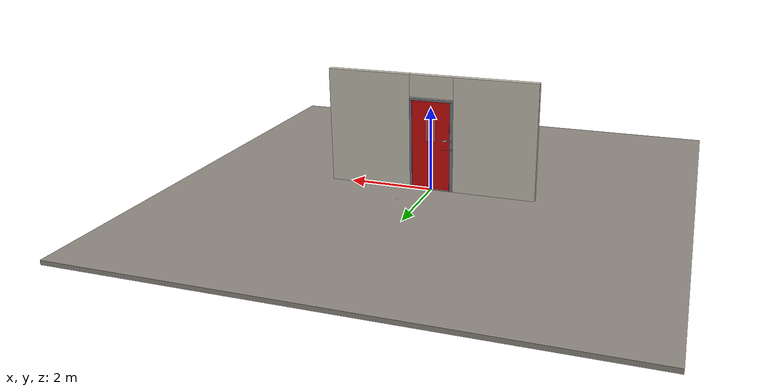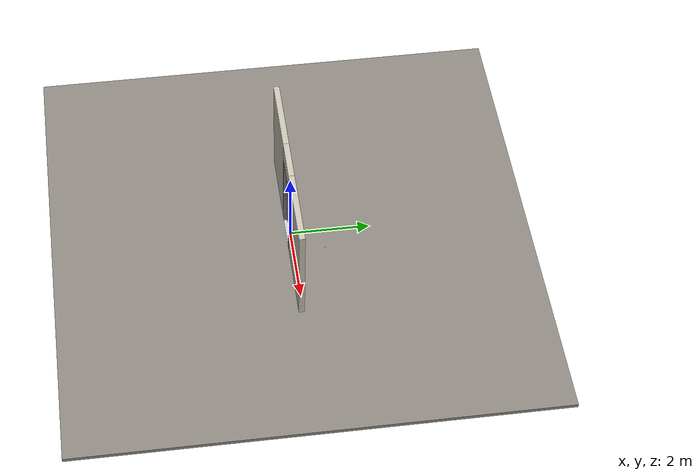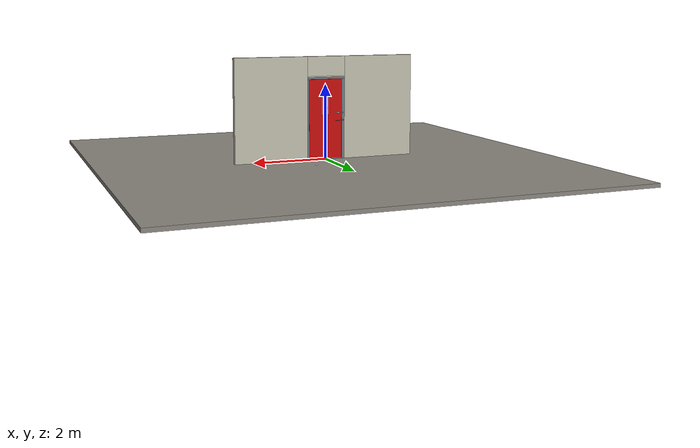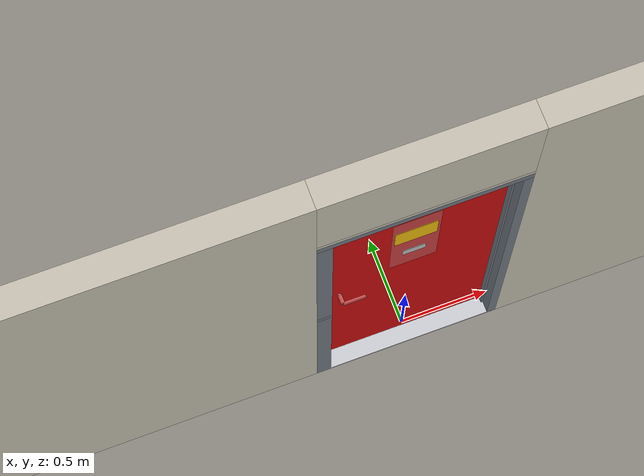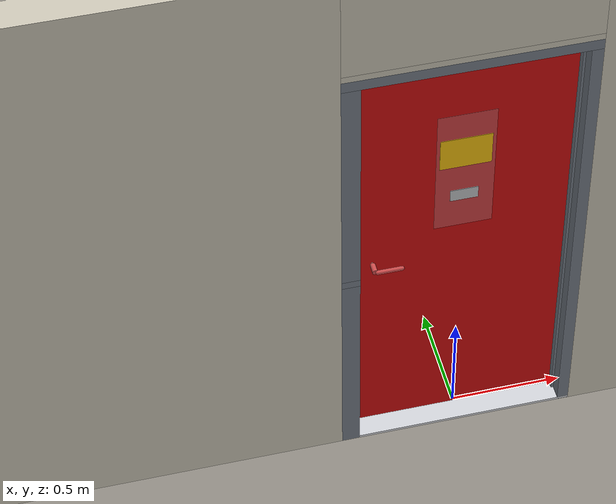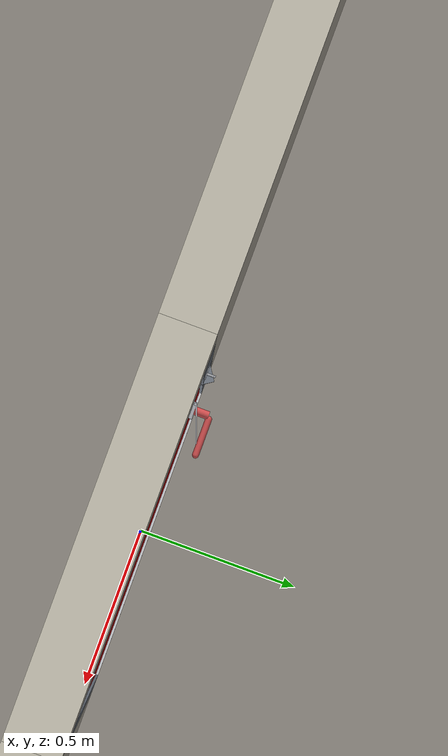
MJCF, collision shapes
<?xml version="1.0" ?>
<mujoco model="db0060_swing_single_full">
  <compiler angle="radian" meshdir="../../hardware" texturedir="../../textures" autolimits="true" inertiafromgeom="false"/>
  <option timestep="0.002" integrator="implicitfast" cone="elliptic" impratio="10" noslip_iterations="3">
    <flag multiccd="enable"/>
  </option>
  <size memory="16M"/>
  <default>
    <geom condim="4" solref="0.005 1" solimp="0.95 0.99 0.001"/>
    <joint solreflimit="0.005 1" solimplimit="0.95 0.99 0.001"/>
    <tendon solreflimit="0.005 1"/>
    <equality solref="0.002 1"/>
  </default>
  <visual>
    <headlight ambient="0.4 0.4 0.4" diffuse="0.7 0.7 0.7" specular="0.2 0.2 0.2"/>
    <quality shadowsize="4096"/>
    <map znear="0.01" zfar="60"/>
  </visual>
  <asset>
    <mesh name="hinge_e22b26c0c1" file="hinge_e22b26c0c1.obj"/>
    <mesh name="hinge_jamb_e1d088f8dc" file="hinge_jamb_e1d088f8dc.obj"/>
    <mesh name="lever_9f02b544cf" file="lever_9f02b544cf.obj"/>
    <material name="mat_floor" rgba="0.55 0.53 0.5 1" specular="0.2" shininess="0.15" reflectance="0"/>
    <material name="mat_wall" rgba="0.78 0.76 0.7 1" specular="0.2" shininess="0.1" reflectance="0"/>
    <material name="mat_leaf" rgba="0.8 0.05 0.05 1" specular="0.23" shininess="0.34" reflectance="0.02"/>
    <material name="mat_glass" rgba="0.85 0.92 0.95 0.25" specular="0.2" shininess="0.95" reflectance="0.1"/>
    <material name="mat_hinge" rgba="0.65 0.66 0.68 1" specular="0.74" shininess="0.5" reflectance="0.36"/>
    <material name="mat_op_nickel_satin" rgba="0.72 0.7 0.66 1" specular="0.8" shininess="0.65" reflectance="0.4"/>
    <material name="mat_trim" rgba="0.85 0.66 0.3 1" specular="0.8" shininess="0.75" reflectance="0.4"/>
    <material name="mat_bolt" rgba="0.85 0.66 0.3 1" specular="0.8" shininess="0.75" reflectance="0.4"/>
    <material name="mat_op_steel_galvanized" rgba="0.65 0.66 0.68 1" specular="0.74" shininess="0.5" reflectance="0.36"/>
    <material name="mat_padlock" rgba="0.85 0.66 0.3 1" specular="0.8" shininess="0.75" reflectance="0.4"/>
    <material name="mat_frame" rgba="0.45 0.48 0.52 1" specular="0.32" shininess="0.6" reflectance="0.08"/>
    <material name="mat_threshold" rgba="0.8 0.81 0.83 1" specular="0.8" shininess="0.6" reflectance="0.4"/>
    <material name="mat_sign" rgba="0.75 0.76 0.77 1" specular="0.8" shininess="0.65" reflectance="0.4"/>
    <material name="mat_placard" rgba="0.95 0.75 0.05 1" specular="0.2" shininess="0.5" reflectance="0"/>
    <material name="mat_stop" rgba="0.9 0.9 0.92 1" specular="0.8" shininess="0.9" reflectance="0.4"/>
    <texture name="skybox" type="skybox" builtin="gradient" rgb1="0.6 0.7 0.85" rgb2="0.9 0.92 0.95" width="256" height="256"/>
  </asset>
  <worldbody>
    <light name="sun" pos="1.5 -2.5 4" dir="-0.3 0.5 -0.8" directional="true" diffuse="0.8 0.8 0.8" specular="0.3 0.3 0.3" castshadow="true"/>
    <light name="fill" pos="-1.5 2.5 3" dir="0.3 -0.5 -0.7" directional="true" diffuse="0.35 0.35 0.4" castshadow="false"/>
    <camera name="robot_view" pos="0 -2.681312 1.812087" xyaxes="1 0 0 0 0.26963 0.962964" fovy="52"/>
    <camera name="far_view" pos="0 2.594313 1.812087" xyaxes="-1 0 0 0 -0.26963 0.962964" fovy="52"/>
    <camera name="iso" pos="-2.004737 -2.259262 2.234138" xyaxes="0.741536 -0.670913 0 0.242917 0.268487 0.932151" fovy="46"/>
    <camera name="detail_handle" pos="-0.1065 -0.877 1.32" xyaxes="0.97561 0.219512 0 -0.070934 0.315262 0.94635" fovy="38"/>
    <geom name="floor" type="box" size="6 6 0.05" pos="0 0 -0.05" material="mat_floor" group="0" contype="1" conaffinity="1" friction="0.8 0.005 0.0001" density="2400"/>
    <geom name="wall_left" type="box" size="0.97975 0.0725 1.3735" pos="-1.52025 -0.0435 1.3735" material="mat_wall" group="0" contype="1" conaffinity="1" friction="0.6 0.005 0.0001" density="800"/>
    <geom name="wall_right" type="box" size="0.99475 0.0725 1.3735" pos="1.50525 -0.0435 1.3735" material="mat_wall" group="0" contype="1" conaffinity="1" friction="0.6 0.005 0.0001" density="800"/>
    <geom name="wall_header" type="box" size="0.5255 0.0725 0.26" pos="-0.015 -0.0435 2.487" material="mat_wall" group="0" contype="1" conaffinity="1" friction="0.6 0.005 0.0001" density="800"/>
    <geom name="hinge_0_jamb" type="mesh" mesh="hinge_jamb_e1d088f8dc" pos="0.4575 0.029 0.267" quat="0 0 0 1" material="mat_hinge" group="1" contype="0" conaffinity="0" density="7850"/>
    <geom name="hinge_1_jamb" type="mesh" mesh="hinge_jamb_e1d088f8dc" pos="0.4575 0.029 1.08" quat="0 0 0 1" material="mat_hinge" group="1" contype="0" conaffinity="0" density="7850"/>
    <geom name="hinge_2_jamb" type="mesh" mesh="hinge_jamb_e1d088f8dc" pos="0.4575 0.029 1.963" quat="0 0 0 1" material="mat_hinge" group="1" contype="0" conaffinity="0" density="7850"/>
    <geom name="leaf_staple_leg_n" type="box" size="0.003 0.0025 0.013" pos="-0.4885 0.042 1.2275" quat="0 0 0.707107 0.707107" material="mat_op_steel_galvanized" group="0" contype="1" conaffinity="1" friction="0.6 0.005 0.0001" density="7800"/>
    <geom name="leaf_staple_leg_p" type="box" size="0.003 0.0025 0.013" pos="-0.4885 0.042 1.2525" quat="0 0 0.707107 0.707107" material="mat_op_steel_galvanized" group="0" contype="1" conaffinity="1" friction="0.6 0.005 0.0001" density="7800"/>
    <geom name="leaf_staple_bridge" type="box" size="0.003 0.015 0.0025" pos="-0.4885 0.0525 1.24" quat="0 0 0.707107 0.707107" material="mat_op_steel_galvanized" group="0" contype="1" conaffinity="1" friction="0.6 0.005 0.0001" density="7800"/>
    <geom name="leaf_staple_base" type="box" size="0.016 0.021 0.001" pos="-0.4885 0.03 1.24" quat="0 0 0.707107 0.707107" material="mat_op_steel_galvanized" group="1" contype="0" conaffinity="0" density="7800"/>
    <geom name="jamb_hinge" type="box" size="0.025 0.0725 1.0735" pos="0.4855 -0.0435 1.0735" material="mat_frame" group="0" contype="1" conaffinity="1" friction="0.6 0.005 0.0001" density="300"/>
    <geom name="strike_1040_wall_n" type="box" size="0.04 0.05325 0.0183" pos="-0.5005 -0.06275 1.04" material="mat_frame" group="0" contype="1" conaffinity="1" friction="0.6 0.005 0.0001" density="300"/>
    <geom name="strike_1040_wall_p" type="box" size="0.04 0.008 0.0183" pos="-0.5005 0.0175 1.04" material="mat_frame" group="0" contype="1" conaffinity="1" friction="0.6 0.005 0.0001" density="300"/>
    <geom name="strike_1040_ramp" type="box" size="0.04 0.018028 0.0183" pos="-0.503782 0.018312 1.04" quat="0.957092 0 0 0.289784" material="mat_frame" group="0" contype="1" conaffinity="1" friction="0.12 0.005 0.0001" density="300"/>
    <geom name="strike_1040_back" type="box" size="0.0285 0.0095 0.0183" pos="-0.512 0 1.04" material="mat_frame" group="0" contype="1" conaffinity="1" friction="0.6 0.005 0.0001" density="300"/>
    <geom name="jamb_strike_0" type="box" size="0.04 0.0725 0.51085" pos="-0.5005 -0.0435 0.51085" material="mat_frame" group="0" contype="1" conaffinity="1" friction="0.6 0.005 0.0001" density="300"/>
    <geom name="jamb_strike_1" type="box" size="0.04 0.0725 0.54435" pos="-0.5005 -0.0435 1.60265" material="mat_frame" group="0" contype="1" conaffinity="1" friction="0.6 0.005 0.0001" density="300"/>
    <geom name="jamb_head" type="box" size="0.5255 0.0725 0.025" pos="-0.015 -0.0435 2.172" material="mat_frame" group="0" contype="1" conaffinity="1" friction="0.6 0.005 0.0001" density="300"/>
    <geom name="head_stud" type="box" size="0.5255 0.0725 0.015" pos="-0.015 -0.0435 2.212" material="mat_wall" group="0" contype="1" conaffinity="1" friction="0.6 0.005 0.0001" density="500"/>
    <geom name="stop_hinge" type="box" size="0.0055 0.016 1.0735" pos="0.455 -0.0385 1.0735" material="mat_frame" group="0" contype="1" conaffinity="1" friction="0.6 0.005 0.0001" density="300"/>
    <geom name="stop_strike" type="box" size="0.0055 0.016 1.0735" pos="-0.455 -0.0385 1.0735" material="mat_frame" group="0" contype="1" conaffinity="1" friction="0.6 0.005 0.0001" density="300"/>
    <geom name="stop_head" type="box" size="0.4605 0.016 0.0055" pos="0 -0.0385 2.1415" material="mat_frame" group="0" contype="1" conaffinity="1" friction="0.6 0.005 0.0001" density="300"/>
    <geom name="threshold" type="box" size="0.5105 0.0725 0.0065" pos="0 -0.0435 0.0065" material="mat_threshold" group="0" contype="1" conaffinity="1" friction="0.5 0.005 0.0001" density="2700"/>
    <geom name="floor_stop_dome" type="sphere" size="0.025" pos="0.545135 0.801201 0" material="mat_stop" group="0" contype="1" conaffinity="1" friction="0.6 0.005 0.0001" density="7000"/>
    <site name="approach_point" pos="0 -1.5 0" quat="1 0 0 0" size="0.05" rgba="0.2 0.9 0.2 0.5" group="4"/>
    <site name="goal_point" pos="0 1.5 0" quat="1 0 0 0" size="0.05" rgba="0.2 0.9 0.2 0.5" group="4"/>
    <site name="door_plane_center" pos="0 0 1.0735" quat="1 0 0 0" size="0.02" rgba="0.2 0.9 0.2 0.5" group="4"/>
    <body name="leaf" pos="0.4605 0 0">
      <inertial pos="-0.454273 0.000363 1.083369" mass="47.469995" quat="0.499624 0.50024 -0.499755 0.500381" diaginertia="3.413579186 17.816050692 21.213265472"/>
      <joint name="leaf_hinge" type="hinge" axis="0 0 -1" pos="-0.003 0.029 0" limited="true" range="0 1.658063" damping="2.268966" frictionloss="3.213914" stiffness="6.6" springref="-0.633044" armature="0.02"/>
      <geom name="leaf_slab" type="box" size="0.457 0.022 1.063" pos="-0.46 0 1.08" material="mat_leaf" group="0" contype="1" conaffinity="1" friction="0.4 0.005 0.0001" density="1"/>
      <geom name="leaf_glass_0" type="box" size="0.125 0.0228 0.3189" pos="-0.46 0 1.5052" material="mat_glass" group="1" contype="0" conaffinity="0" density="1"/>
      <geom name="hinge_0" type="mesh" mesh="hinge_e22b26c0c1" pos="-0.003 0.029 0.267" quat="0 0 0 1" material="mat_hinge" group="1" contype="0" conaffinity="0" density="7850"/>
      <geom name="hinge_1" type="mesh" mesh="hinge_e22b26c0c1" pos="-0.003 0.029 1.08" quat="0 0 0 1" material="mat_hinge" group="1" contype="0" conaffinity="0" density="7850"/>
      <geom name="hinge_2" type="mesh" mesh="hinge_e22b26c0c1" pos="-0.003 0.029 1.963" quat="0 0 0 1" material="mat_hinge" group="1" contype="0" conaffinity="0" density="7850"/>
      <geom name="leaf_latch_bolt_faceplate" type="box" size="0.0006 0.014 0.0283" pos="-0.9164 0 1.04" material="mat_bolt" group="1" contype="0" conaffinity="0" density="8500"/>
      <geom name="leaf_hasp_plate" type="box" size="0.024 0.0215 0.0055" pos="-0.842 0.0275 1.24" quat="0 0 0.707107 0.707107" material="mat_op_steel_galvanized" group="1" contype="0" conaffinity="0" density="7800"/>
      <geom name="sign_push" type="box" size="0.06 0.001 0.03" pos="-0.46 -0.023 1.367" material="mat_sign" group="2" contype="0" conaffinity="0" density="7900"/>
      <geom name="sign_pull" type="box" size="0.06 0.001 0.03" pos="-0.46 0.023 1.367" material="mat_sign" group="2" contype="0" conaffinity="0" density="7900"/>
      <geom name="warning_placard" type="box" size="0.11 0.001 0.08" pos="-0.46 -0.023 1.6115" material="mat_placard" group="2" contype="0" conaffinity="0" density="1000"/>
      <site name="leaf_edge_mid" pos="-0.917 0 1.063" quat="1 0 0 0" size="0.02" rgba="0.2 0.9 0.2 0.5" group="4"/>
      <body name="leaf_handle" pos="-0.847 0 1.04">
        <inertial pos="0.028544 0 0" mass="0.978187" quat="0 0.707107 0.707107 0" diaginertia="0.001772047 0.003604455 0.005198299"/>
        <joint name="leaf_handle_hinge" type="hinge" axis="0 1 0" limited="true" range="0 0.96" damping="0.245624" frictionloss="0.048" stiffness="1.2" springref="-0.458333" armature="0.01"/>
        <geom name="leaf_handle_spindle" type="cylinder" size="0.006 0.03" pos="0 0 0" quat="0.707107 -0.707107 0 0" material="mat_op_nickel_satin" group="1" contype="0" conaffinity="0" density="7850"/>
        <geom name="leaf_handle_lever_n" type="mesh" mesh="lever_9f02b544cf" pos="0 -0.022 0" quat="0 0 -0.707107 0.707107" material="mat_op_nickel_satin" group="1" contype="0" conaffinity="0" density="3000"/>
        <geom name="leaf_handle_lever_col_n" type="capsule" size="0.0095 0.053" pos="0.0625 -0.077 0" quat="0.707107 0 0.707107 0" material="mat_op_nickel_satin" group="3" contype="1" conaffinity="1" rgba="0.8 0.3 0.3 0.25" friction="0.7 0.01 0.0001" density="3000"/>
        <geom name="leaf_handle_hub_col_n" type="cylinder" size="0.012 0.022" pos="0 -0.052 0" quat="0.707107 -0.707107 0 0" material="mat_op_nickel_satin" group="3" contype="1" conaffinity="1" rgba="0.8 0.3 0.3 0.25" friction="0.6 0.005 0.0001" density="3000"/>
        <geom name="leaf_handle_lever_p" type="mesh" mesh="lever_9f02b544cf" pos="0 0.022 0" quat="0 0 0.707107 0.707107" material="mat_op_nickel_satin" group="1" contype="0" conaffinity="0" density="3000"/>
        <geom name="leaf_handle_lever_col_p" type="capsule" size="0.0095 0.053" pos="0.0625 0.077 0" quat="0.707107 0 0.707107 0" material="mat_op_nickel_satin" group="3" contype="1" conaffinity="1" rgba="0.8 0.3 0.3 0.25" friction="0.7 0.01 0.0001" density="3000"/>
        <geom name="leaf_handle_hub_col_p" type="cylinder" size="0.012 0.022" pos="0 0.052 0" quat="0.707107 -0.707107 0 0" material="mat_op_nickel_satin" group="3" contype="1" conaffinity="1" rgba="0.8 0.3 0.3 0.25" friction="0.6 0.005 0.0001" density="3000"/>
        <site name="leaf_handle_grip_n" pos="0.1 -0.077 0" quat="1 0 0 0" size="0.012" rgba="0.2 0.9 0.2 0.5" group="4"/>
        <site name="leaf_handle_grip_p" pos="0.1 0.077 0" quat="1 0 0 0" size="0.012" rgba="0.2 0.9 0.2 0.5" group="4"/>
      </body>
      <body name="leaf_latch_bolt" pos="-0.917 0 1.04">
        <inertial pos="0.0055 0 0" mass="0.074627" quat="0.92388 0.382683 0 0" diaginertia="0.000002271 0.000013255 0.000013255"/>
        <joint name="leaf_latch_bolt_slide" type="slide" axis="1 0 0" limited="true" range="0 0.019" damping="2" frictionloss="0.3" stiffness="600" springref="-0.01" armature="0.1"/>
        <geom name="leaf_latch_bolt_capsule" type="capsule" size="0.008 0.0165" pos="0.0055 0 0" quat="0.707107 0 -0.707107 0" material="mat_bolt" group="0" contype="1" conaffinity="1" friction="0.2 0.005 0.0001" density="8500"/>
      </body>
      <body name="leaf_hasp" pos="-0.862 0.033 1.24">
        <inertial pos="0.042059 0.012847 0" mass="0.110745" quat="0.695779 0.695779 0.126064 0.126064" diaginertia="0.000012666 0.000140194 0.000152371"/>
        <joint name="leaf_hasp_hinge" type="hinge" axis="0 0 -1" limited="true" range="0 2.9" damping="0.02" frictionloss="0.05" armature="0.005" ref="2.8"/>
        <geom name="leaf_hasp_strap" type="box" size="0.0545 0.0175 0.0015" pos="0.051854 0.016844 0" quat="0.696818 0.696818 0.120185 0.120185" material="mat_op_steel_galvanized" group="0" contype="1" conaffinity="1" friction="0.6 0.005 0.0001" density="7800"/>
        <geom name="leaf_hasp_knuckle" type="cylinder" size="0.0045 0.0215" pos="0.00134 -0.003769 0" quat="0 0.169967 -0.98545 0" material="mat_op_steel_galvanized" group="1" contype="0" conaffinity="0" density="7850"/>
        <site name="leaf_hasp_grip" pos="0.087208 0.020392 0" quat="0.169967 0 0 -0.98545" size="0.01" rgba="0.2 0.9 0.2 0.5" group="4"/>
      </body>
    </body>
  </worldbody>
  <tendon>
    <fixed name="leaf_latch_bolt_coupling" limited="true" range="0 10">
      <joint joint="leaf_latch_bolt_slide" coef="1"/>
      <joint joint="leaf_handle_hinge" coef="-0.020879"/>
    </fixed>
  </tendon>
  <sensor>
    <jointpos name="leaf_hinge_pos" joint="leaf_hinge"/>
    <jointvel name="leaf_hinge_vel" joint="leaf_hinge"/>
    <jointpos name="leaf_handle_hinge_pos" joint="leaf_handle_hinge"/>
    <jointvel name="leaf_handle_hinge_vel" joint="leaf_handle_hinge"/>
    <jointpos name="leaf_latch_bolt_slide_pos" joint="leaf_latch_bolt_slide"/>
    <jointvel name="leaf_latch_bolt_slide_vel" joint="leaf_latch_bolt_slide"/>
    <jointpos name="leaf_hasp_hinge_pos" joint="leaf_hasp_hinge"/>
    <jointvel name="leaf_hasp_hinge_vel" joint="leaf_hasp_hinge"/>
  </sensor>
</mujoco>
